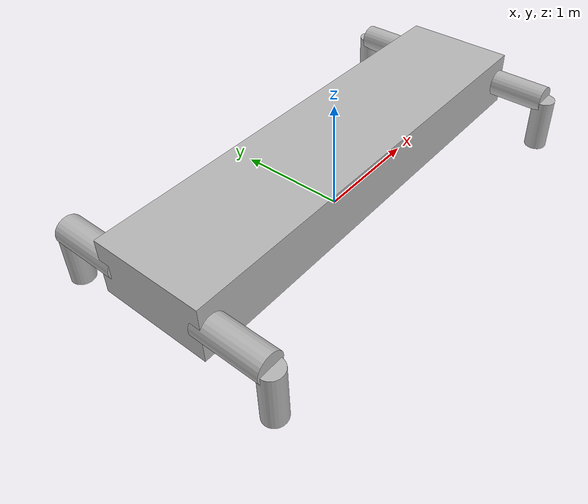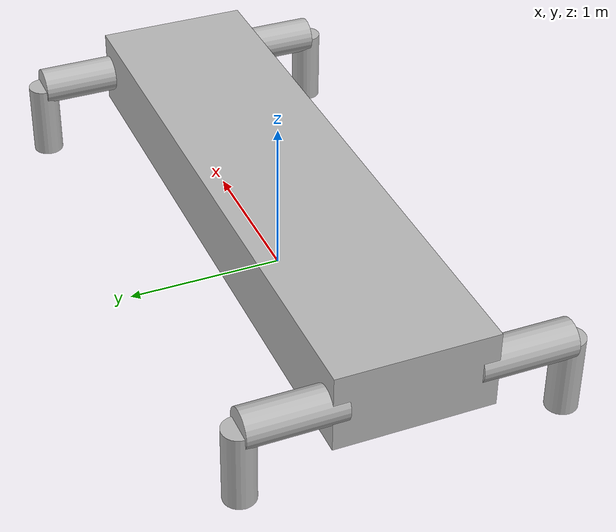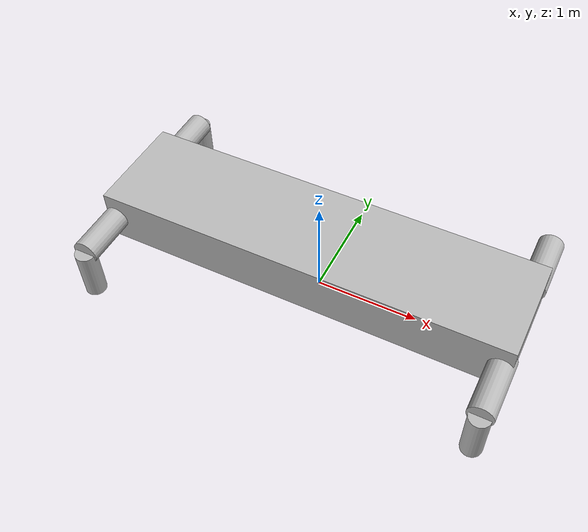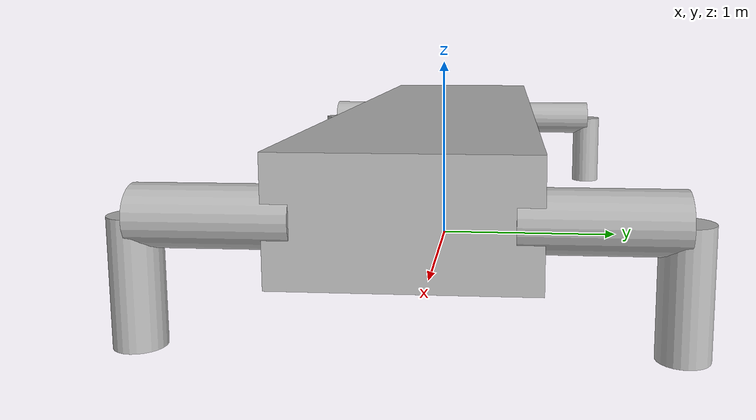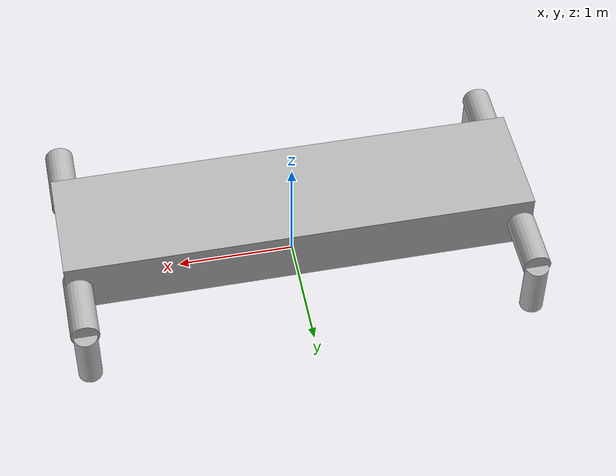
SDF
<?xml version='1.0'?>
<sdf version='1.4'>
  <model name="Side">
    <static>false</static>
    <self_collide>1</self_collide>
      <link name='body'>
        <pose>0 0 .5 0 0 0</pose>
        <inertial>
          <mass>20</mass>
        </inertial>
        <collision name='collision'>
          <pose frame=''>0 0 0 0 0 0</pose>
          <geometry>
            <box>
              <size>4 1 .5</size>
            </box>
          </geometry>
        </collision>
          <visual name='visual'>
          <pose>0 0 0 0 0 0</pose>
          <geometry>
            <box>
              <size>4 1 .5</size>
            </box>
          </geometry>
        </visual>
      </link>

      <!-- front left leg -->
      <include>
        <uri>model://SideLeg</uri>
        <pose> 1.9 1 0 0 0 -1.57</pose>
        <name>fl_leg</name>
      </include>
      <joint name="body_to_fl_leg" type="revolute">
        <child>fl_leg::r_thigh_lift</child>
        <parent>body</parent>
        <pose frame=''>0 0 0.3 0 0 0</pose>
        <axis>
          <xyz>0 0 1</xyz>
          <limit>
          <lower>-1.57</lower>
          <upper>1.57</upper>
        </limit>

        </axis>
      </joint>

      <!-- front right leg -->
      <include>
        <uri>model://SideLeg</uri>
        <pose> 1.9 -1 0 0 0 1.57</pose>
        <name>fr_leg</name>
      </include>
      <joint name="body_to_fr_leg" type="revolute">
        <child>fr_leg::r_thigh_lift</child>
        <parent>body</parent>
        <pose frame=''>0 0 0.3 0 0 0</pose>
        <axis>
          <xyz> 0 0 1</xyz>
          <limit>
          <lower>-1.57</lower>
          <upper>1.57</upper>
        </limit>
        </axis>
      </joint>

      <!-- rear left leg -->
      <include>
        <uri>model://SideLeg</uri>
        <pose>-1.9 1 0 0 0 -1.57</pose>
        <name>rl_leg</name>
      </include>
      <joint name="body_to_rl_leg" type="revolute">
        <child>rl_leg::r_thigh_lift</child>
        <parent>body</parent>
        <pose frame=''>0 0 0.3 0 0 0</pose>
        <axis>
          <xyz>0 0 1</xyz>
          <limit>
          <lower>-1.57</lower>
          <upper>1.57</upper>
        </limit>
        </axis>
      </joint>

      <!-- rear right leg -->
      <include>
        <uri>model://SideLeg</uri>
        <pose>-1.9 -1 0 0 0 1.57</pose>
        <name>rr_leg</name>
      </include>
      <joint name="body_to_rr_leg" type="revolute">
        <child>rr_leg::r_thigh_lift</child>
        <parent>body</parent>
        <pose frame=''>0 0 0.3 0 0 0</pose>
        <axis>
          <xyz>0 0 1</xyz>
          <limit>
          <lower>-1.57</lower>
          <upper>1.57</upper>
        </limit>
        </axis>
      </joint>
      <self_collide>1</self_collide>
    </model>
</sdf>

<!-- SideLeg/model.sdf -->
<sdf version='1.6'>
  <model name='SideLeg'>
    <link name='r_calf'>
      <pose frame=''>0 0 0.25 0 0 0</pose>
      <inertial>
        <mass>.3125</mass>
      </inertial>
      <gravity>1</gravity>
      <self_collide>1</self_collide>
      <visual name='r_calf_geom_visual'>
        <pose frame=''>0 0 0 0 0 0</pose>
        <geometry>
          <cylinder>
            <radius>0.1</radius>
            <length>0.5 </length>
          </cylinder>
        </geometry>
      </visual>
      <collision name='r_calf_geom'>
        <pose frame=''>0 0 0 0 0 0</pose>
        <geometry>
          <cylinder>
            <radius>0.1</radius>
            <length>0.5</length>
          </cylinder>
        </geometry>
      </collision>
    </link>

    <link name='r_thigh_lift'>
      <pose frame=''>0.3 0 0.5 0 1.57 0</pose>
      <inertial>
        <mass>.463</mass>
      </inertial>
      <gravity>1</gravity>
      <self_collide>1</self_collide>

      <visual name='r_thigh_lift_geom_visual'>
        <pose frame=''>0 0 0 0 0 0</pose>
        <geometry>
          <cylinder>
            <radius>0.12</radius>
            <length>0.6</length>
          </cylinder>
        </geometry>
      </visual>
      <collision name='r_thigh_lift_geom'>
        <pose frame=''>0 0 0 0 0 0</pose>
        <geometry>
          <cylinder>
            <radius>0.12</radius>
            <length>0.6</length>
          </cylinder>
        </geometry>
      </collision>
    </link>

    <joint name='r_calf_joint' type='revolute'>
      <parent>r_thigh_lift</parent>
      <child>r_calf</child>
      <pose frame=''>0 0 0.25 0 0 0</pose>
      <axis>
        <xyz>0 1 0</xyz>
        <use_parent_model_frame>1</use_parent_model_frame>
        <limit>
          <lower>0</lower>
          <upper>1.57</upper>
        </limit>
      </axis>
    </joint>

    <static>0</static>
    <allow_auto_disable>1</allow_auto_disable>

  </model>
</sdf>
